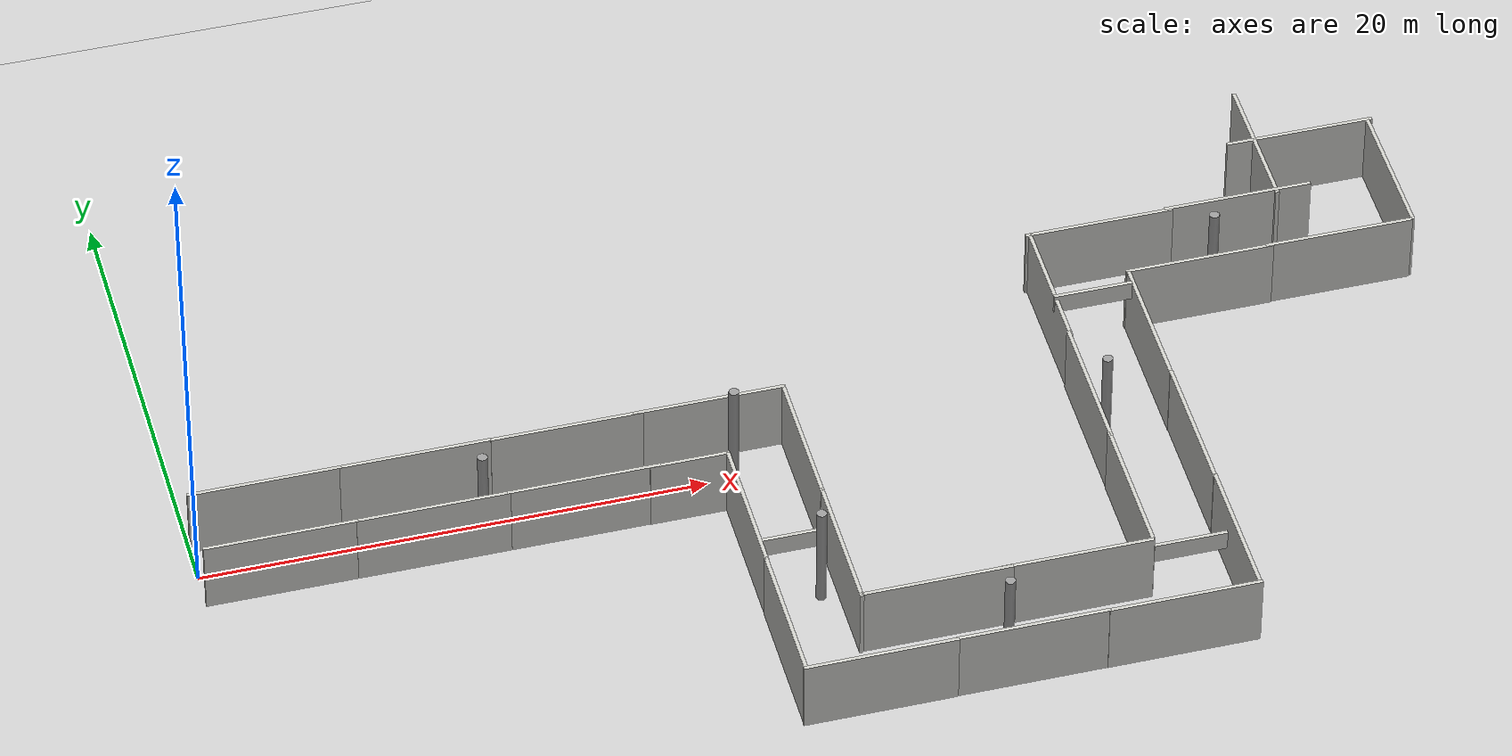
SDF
<sdf version="1.6">
 <world name="default">
  <light name="sun" type="directional">
   <pose>0 0 10 0 -0 0</pose>
   <diffuse>0.8 0.8 0.8 1</diffuse>
   <specular>0.2 0.2 0.2 1</specular>
   <attenuation>
    <range>1000</range>
    <constant>0.9</constant>
    <linear>0.01</linear>
    <quadratic>0.001</quadratic>
   </attenuation>
   <direction>-0.5 0.1 -0.9</direction>
  </light>
  <model name="ground_plane">
   <static>1</static>
   <link name="link">
    <collision name="collision">
     <geometry><plane><normal>0 0 1</normal><size>100 100</size></plane></geometry>
     <surface>
      <contact><collide_bitmask>65535</collide_bitmask></contact>
      <friction><ode><mu>100</mu><mu2>50</mu2></ode></friction>
     </surface>
    </collision>
    <visual name="visual">
     <cast_shadows>0</cast_shadows>
     <geometry><plane><normal>0 0 1</normal><size>100 100</size></plane></geometry>
     <material>
      <script><uri>file://media/materials/scripts/gazebo.material</uri><name>Gazebo/Grey</name></script>
     </material>
    </visual>
   </link>
  </model>
  <gravity>0 0 -9.8</gravity>
  <magnetic_field>6e-06 2.3e-05 -4.2e-05</magnetic_field>
  <atmosphere type="adiabatic"/>
  <physics name="default_physics" default="0" type="ode">
   <max_step_size>0.001</max_step_size>
   <real_time_factor>1</real_time_factor>
   <real_time_update_rate>1000</real_time_update_rate>
  </physics>
  <scene><ambient>0.4 0.4 0.4 1</ambient><background>0.7 0.7 0.7 1</background><shadows>1</shadows></scene>
  <spherical_coordinates>
   <surface_model>EARTH_WGS84</surface_model>
   <latitude_deg>0</latitude_deg>
   <longitude_deg>0</longitude_deg>
   <elevation>0</elevation>
   <heading_deg>0</heading_deg>
  </spherical_coordinates>
  <model name="6m_wall_new">
   <link name="Wall_0">
    <collision name="6m_wall_newc">
     <geometry><box><size>6 0.15 3</size></box></geometry>
     <pose>0 0 1.5 0 -0 0</pose>
    </collision>
    <visual name="6m_wall_newv">
     <pose>0 0 1.5 0 -0 0</pose>
     <geometry><box><size>6 0.15 3</size></box></geometry>
     <material>
      <script><uri>file://media/materials/scripts/gazebo.material</uri><name>Gazebo/CeilingTiled</name></script>
      <ambient>1 1 1 1</ambient>
     </material>
     <meta><layer>0</layer></meta>
    </visual>
   </link>
   <static>1</static>
   <pose>2.99996 1.48839 0 0 -0 0</pose>
  </model>
  <model name="6m_wall_new_0">
   <link name="Wall_0">
    <collision name="6m_wall_newc">
     <geometry><box><size>6 0.15 3</size></box></geometry>
     <pose>0 0 1.5 0 -0 0</pose>
    </collision>
    <visual name="6m_wall_newv">
     <pose>0 0 1.5 0 -0 0</pose>
     <geometry><box><size>6 0.15 3</size></box></geometry>
     <material>
      <script><uri>file://media/materials/scripts/gazebo.material</uri><name>Gazebo/CeilingTiled</name></script>
      <ambient>1 1 1 1</ambient>
     </material>
     <meta><layer>0</layer></meta>
    </visual>
   </link>
   <static>1</static>
   <pose>2.97128 -1.50406 0 0 -0 0</pose>
  </model>
  <model name="6m_wall_new_0_clone">
   <link name="Wall_0">
    <collision name="6m_wall_newc">
     <geometry><box><size>6 0.15 3</size></box></geometry>
     <pose>0 0 1.5 0 -0 0</pose>
    </collision>
    <visual name="6m_wall_newv">
     <pose>0 0 1.5 0 -0 0</pose>
     <geometry><box><size>6 0.15 3</size></box></geometry>
     <material>
      <script><uri>file://media/materials/scripts/gazebo.material</uri><name>Gazebo/CeilingTiled</name></script>
      <ambient>1 1 1 1</ambient>
     </material>
     <meta><layer>0</layer></meta>
    </visual>
   </link>
   <static>1</static>
   <pose>8.88664 -1.50661 0 0 -0 0</pose>
  </model>
  <model name="6m_wall_new_clone">
   <link name="Wall_0">
    <collision name="6m_wall_newc">
     <geometry><box><size>6 0.15 3</size></box></geometry>
     <pose>0 0 1.5 0 -0 0</pose>
    </collision>
    <visual name="6m_wall_newv">
     <pose>0 0 1.5 0 -0 0</pose>
     <geometry><box><size>6 0.15 3</size></box></geometry>
     <material>
      <script><uri>file://media/materials/scripts/gazebo.material</uri><name>Gazebo/CeilingTiled</name></script>
      <ambient>1 1 1 1</ambient>
     </material>
     <meta><layer>0</layer></meta>
    </visual>
   </link>
   <static>1</static>
   <pose>8.91227 1.48711 0 0 -0 0</pose>
  </model>
  <model name="6m_wall_new_clone_0">
   <link name="Wall_0">
    <collision name="6m_wall_newc">
     <geometry><box><size>6 0.15 3</size></box></geometry>
     <pose>0 0 1.5 0 -0 0</pose>
    </collision>
    <visual name="6m_wall_newv">
     <pose>0 0 1.5 0 -0 0</pose>
     <geometry><box><size>6 0.15 3</size></box></geometry>
     <material>
      <script><uri>file://media/materials/scripts/gazebo.material</uri><name>Gazebo/CeilingTiled</name></script>
      <ambient>1 1 1 1</ambient>
     </material>
     <meta><layer>0</layer></meta>
    </visual>
   </link>
   <static>1</static>
   <pose>14.8326 1.47184 0 0 -0 0</pose>
  </model>
  <model name="6m_wall_new_clone_1">
   <link name="Wall_0">
    <collision name="6m_wall_newc">
     <geometry><box><size>6 0.15 3</size></box></geometry>
     <pose>0 0 1.5 0 -0 0</pose>
    </collision>
    <visual name="6m_wall_newv">
     <pose>0 0 1.5 0 -0 0</pose>
     <geometry><box><size>6 0.15 3</size></box></geometry>
     <material>
      <script><uri>file://media/materials/scripts/gazebo.material</uri><name>Gazebo/CeilingTiled</name></script>
      <ambient>1 1 1 1</ambient>
     </material>
     <meta><layer>0</layer></meta>
    </visual>
   </link>
   <static>1</static>
   <pose>20.443 1.48202 0 0 -0 0</pose>
  </model>
  <model name="6m_wall_new_clone_2">
   <link name="Wall_0">
    <collision name="6m_wall_newc">
     <geometry><box><size>6 0.15 3</size></box></geometry>
     <pose>0 0 1.5 0 -0 0</pose>
    </collision>
    <visual name="6m_wall_newv">
     <pose>0 0 1.5 0 -0 0</pose>
     <geometry><box><size>6 0.15 3</size></box></geometry>
     <material>
      <script><uri>file://media/materials/scripts/gazebo.material</uri><name>Gazebo/CeilingTiled</name></script>
      <ambient>1 1 1 1</ambient>
     </material>
     <meta><layer>0</layer></meta>
    </visual>
   </link>
   <static>1</static>
   <pose>14.7657 -1.5059 0 0 -0 0</pose>
  </model>
  <model name="3m_wall_new">
   <pose>18.9099 -1.52611 0 0 -0 0</pose>
   <link name="Wall_45">
    <collision name="3m_wall_newc">
     <geometry><box><size>3.15 0.15 3</size></box></geometry>
     <pose>0 0 1.5 0 -0 0</pose>
    </collision>
    <visual name="3m_wall_newv">
     <pose>0 0 1.5 0 -0 0</pose>
     <geometry><box><size>3.15 0.15 3</size></box></geometry>
     <material>
      <script><uri>file://media/materials/scripts/gazebo.material</uri><name>Gazebo/CeilingTiled</name></script>
      <ambient>1 1 1 1</ambient>
     </material>
     <meta><layer>0</layer></meta>
    </visual>
   </link>
   <static>1</static>
  </model>
  <model name="6m_wall_new_1">
   <link name="Wall_0">
    <collision name="6m_wall_newc">
     <geometry><box><size>6 0.15 3</size></box></geometry>
     <pose>0 0 1.5 0 -0 0</pose>
    </collision>
    <visual name="6m_wall_newv">
     <pose>0 0 1.5 0 -0 0</pose>
     <geometry><box><size>6 0.15 3</size></box></geometry>
     <material>
      <script><uri>file://media/materials/scripts/gazebo.material</uri><name>Gazebo/CeilingTiled</name></script>
      <ambient>1 1 1 1</ambient>
     </material>
     <meta><layer>0</layer></meta>
    </visual>
   </link>
   <static>1</static>
   <pose>20.3797 -4.52264 0 0 0 -1.58088</pose>
  </model>
  <model name="6m_wall_new_1_clone">
   <link name="Wall_0">
    <collision name="6m_wall_newc">
     <geometry><box><size>6 0.15 3</size></box></geometry>
     <pose>0 0 1.5 0 -0 0</pose>
    </collision>
    <visual name="6m_wall_newv">
     <pose>0 0 1.5 0 -0 0</pose>
     <geometry><box><size>6 0.15 3</size></box></geometry>
     <material>
      <script><uri>file://media/materials/scripts/gazebo.material</uri><name>Gazebo/CeilingTiled</name></script>
      <ambient>1 1 1 1</ambient>
     </material>
     <meta><layer>0</layer></meta>
    </visual>
   </link>
   <static>1</static>
   <pose>23.3711 -1.44604 0 0 0 -1.58088</pose>
  </model>
  <model name="6m_wall_new_1_clone_0">
   <link name="Wall_0">
    <collision name="6m_wall_newc">
     <geometry><box><size>6 0.15 3</size></box></geometry>
     <pose>0 0 1.5 0 -0 0</pose>
    </collision>
    <visual name="6m_wall_newv">
     <pose>0 0 1.5 0 -0 0</pose>
     <geometry><box><size>6 0.15 3</size></box></geometry>
     <material>
      <script><uri>file://media/materials/scripts/gazebo.material</uri><name>Gazebo/CeilingTiled</name></script>
      <ambient>1 1 1 1</ambient>
     </material>
     <meta><layer>0</layer></meta>
    </visual>
   </link>
   <static>1</static>
   <pose>23.3143 -7.30735 0 0 0 -1.58088</pose>
  </model>
  <model name="6m_wall_new_1_clone_1">
   <link name="Wall_0">
    <collision name="6m_wall_newc">
     <geometry><box><size>6 0.15 3</size></box></geometry>
     <pose>0 0 1.5 0 -0 0</pose>
    </collision>
    <visual name="6m_wall_newv">
     <pose>0 0 1.5 0 -0 0</pose>
     <geometry><box><size>6 0.15 3</size></box></geometry>
     <material>
      <script><uri>file://media/materials/scripts/gazebo.material</uri><name>Gazebo/CeilingTiled</name></script>
      <ambient>1 1 1 1</ambient>
     </material>
     <meta><layer>0</layer></meta>
    </visual>
   </link>
   <static>1</static>
   <pose>20.3048 -10.3646 0 0 0 -1.58088</pose>
  </model>
  <model name="6m_wall_new_2">
   <link name="Wall_0">
    <collision name="6m_wall_newc">
     <geometry><box><size>6 0.15 3</size></box></geometry>
     <pose>0 0 1.5 0 -0 0</pose>
    </collision>
    <visual name="6m_wall_newv">
     <pose>0 0 1.5 0 -0 0</pose>
     <geometry><box><size>6 0.15 3</size></box></geometry>
     <material>
      <script><uri>file://media/materials/scripts/gazebo.material</uri><name>Gazebo/CeilingTiled</name></script>
      <ambient>1 1 1 1</ambient>
     </material>
     <meta><layer>0</layer></meta>
    </visual>
   </link>
   <static>1</static>
   <pose>23.1824 -13.3777 0 0 -0 0</pose>
  </model>
  <model name="6m_wall_new_2_clone">
   <link name="Wall_0">
    <collision name="6m_wall_newc">
     <geometry><box><size>6 0.15 3</size></box></geometry>
     <pose>0 0 1.5 0 -0 0</pose>
    </collision>
    <visual name="6m_wall_newv">
     <pose>0 0 1.5 0 -0 0</pose>
     <geometry><box><size>6 0.15 3</size></box></geometry>
     <material>
      <script><uri>file://media/materials/scripts/gazebo.material</uri><name>Gazebo/CeilingTiled</name></script>
      <ambient>1 1 1 1</ambient>
     </material>
     <meta><layer>0</layer></meta>
    </visual>
   </link>
   <static>1</static>
   <pose>26.214 -10.1857 0 0 -0 0</pose>
  </model>
  <model name="6m_wall_new_2_clone_0">
   <link name="Wall_0">
    <collision name="6m_wall_newc">
     <geometry><box><size>6 0.15 3</size></box></geometry>
     <pose>0 0 1.5 0 -0 0</pose>
    </collision>
    <visual name="6m_wall_newv">
     <pose>0 0 1.5 0 -0 0</pose>
     <geometry><box><size>6 0.15 3</size></box></geometry>
     <material>
      <script><uri>file://media/materials/scripts/gazebo.material</uri><name>Gazebo/CeilingTiled</name></script>
      <ambient>1 1 1 1</ambient>
     </material>
     <meta><layer>0</layer></meta>
    </visual>
   </link>
   <static>1</static>
   <pose>29.0881 -13.3553 0 0 -0 0</pose>
  </model>
  <model name="6m_wall_new_2_clone_1">
   <link name="Wall_0">
    <collision name="6m_wall_newc">
     <geometry><box><size>6 0.15 3</size></box></geometry>
     <pose>0 0 1.5 0 -0 0</pose>
    </collision>
    <visual name="6m_wall_newv">
     <pose>0 0 1.5 0 -0 0</pose>
     <geometry><box><size>6 0.15 3</size></box></geometry>
     <material>
      <script><uri>file://media/materials/scripts/gazebo.material</uri><name>Gazebo/CeilingTiled</name></script>
      <ambient>1 1 1 1</ambient>
     </material>
     <meta><layer>0</layer></meta>
    </visual>
   </link>
   <static>1</static>
   <pose>31.7375 -10.1706 0 0 -0 0</pose>
  </model>
  <model name="6m_wall_new_2_clone_2">
   <link name="Wall_0">
    <collision name="6m_wall_newc">
     <geometry><box><size>6 0.15 3</size></box></geometry>
     <pose>0 0 1.5 0 -0 0</pose>
    </collision>
    <visual name="6m_wall_newv">
     <pose>0 0 1.5 0 -0 0</pose>
     <geometry><box><size>6 0.15 3</size></box></geometry>
     <material>
      <script><uri>file://media/materials/scripts/gazebo.material</uri><name>Gazebo/CeilingTiled</name></script>
      <ambient>1 1 1 1</ambient>
     </material>
     <meta><layer>0</layer></meta>
    </visual>
   </link>
   <static>1</static>
   <pose>35.0267 -13.3707 0 0 -0 0</pose>
  </model>
  <model name="6m_wall_new_1_clone_0_clone">
   <link name="Wall_0">
    <collision name="6m_wall_newc">
     <geometry><box><size>6 0.15 3</size></box></geometry>
     <pose>0 0 1.5 0 -0 0</pose>
    </collision>
    <visual name="6m_wall_newv">
     <pose>0 0 1.5 0 -0 0</pose>
     <geometry><box><size>6 0.15 3</size></box></geometry>
     <material>
      <script><uri>file://media/materials/scripts/gazebo.material</uri><name>Gazebo/CeilingTiled</name></script>
      <ambient>1 1 1 1</ambient>
     </material>
     <meta><layer>0</layer></meta>
    </visual>
   </link>
   <static>1</static>
   <pose>37.9532 -10.3881 0 0 0 -1.58088</pose>
  </model>
  <model name="6m_wall_new_1_clone_0_clone_0">
   <link name="Wall_0">
    <collision name="6m_wall_newc">
     <geometry><box><size>6 0.15 3</size></box></geometry>
     <pose>0 0 1.5 0 -0 0</pose>
    </collision>
    <visual name="6m_wall_newv">
     <pose>0 0 1.5 0 -0 0</pose>
     <geometry><box><size>6 0.15 3</size></box></geometry>
     <material>
      <script><uri>file://media/materials/scripts/gazebo.material</uri><name>Gazebo/CeilingTiled</name></script>
      <ambient>1 1 1 1</ambient>
     </material>
     <meta><layer>0</layer></meta>
    </visual>
   </link>
   <static>1</static>
   <pose>34.7349 -7.1501 0 0 0 -1.58088</pose>
  </model>
  <model name="6m_wall_new_1_clone_0_clone_1">
   <link name="Wall_0">
    <collision name="6m_wall_newc">
     <geometry><box><size>6 0.15 3</size></box></geometry>
     <pose>0 0 1.5 0 -0 0</pose>
    </collision>
    <visual name="6m_wall_newv">
     <pose>0 0 1.5 0 -0 0</pose>
     <geometry><box><size>6 0.15 3</size></box></geometry>
     <material>
      <script><uri>file://media/materials/scripts/gazebo.material</uri><name>Gazebo/CeilingTiled</name></script>
      <ambient>1 1 1 1</ambient>
     </material>
     <meta><layer>0</layer></meta>
    </visual>
   </link>
   <static>1</static>
   <pose>37.9931 -4.50209 0 0 0 -1.58088</pose>
  </model>
  <model name="6m_wall_new_1_clone_0_clone_2">
   <link name="Wall_0">
    <collision name="6m_wall_newc">
     <geometry><box><size>6 0.15 3</size></box></geometry>
     <pose>0 0 1.5 0 -0 0</pose>
    </collision>
    <visual name="6m_wall_newv">
     <pose>0 0 1.5 0 -0 0</pose>
     <geometry><box><size>6 0.15 3</size></box></geometry>
     <material>
      <script><uri>file://media/materials/scripts/gazebo.material</uri><name>Gazebo/CeilingTiled</name></script>
      <ambient>1 1 1 1</ambient>
     </material>
     <meta><layer>0</layer></meta>
    </visual>
   </link>
   <static>1</static>
   <pose>34.8151 -1.36737 0 0 0 -1.58088</pose>
  </model>
  <model name="6m_wall_new_1_clone_0_clone_1_clone">
   <link name="Wall_0">
    <collision name="6m_wall_newc">
     <geometry><box><size>6 0.15 3</size></box></geometry>
     <pose>0 0 1.5 0 -0 0</pose>
    </collision>
    <visual name="6m_wall_newv">
     <pose>0 0 1.5 0 -0 0</pose>
     <geometry><box><size>6 0.15 3</size></box></geometry>
     <material>
      <script><uri>file://media/materials/scripts/gazebo.material</uri><name>Gazebo/CeilingTiled</name></script>
      <ambient>1 1 1 1</ambient>
     </material>
     <meta><layer>0</layer></meta>
    </visual>
   </link>
   <static>1</static>
   <pose>38.0378 1.3423 0 0 0 -1.58088</pose>
  </model>
  <model name="6m_wall_new_1_clone_0_clone_1_clone_0">
   <link name="Wall_0">
    <collision name="6m_wall_newc">
     <geometry><box><size>6 0.15 3</size></box></geometry>
     <pose>0 0 1.5 0 -0 0</pose>
    </collision>
    <visual name="6m_wall_newv">
     <pose>0 0 1.5 0 -0 0</pose>
     <geometry><box><size>6 0.15 3</size></box></geometry>
     <material>
      <script><uri>file://media/materials/scripts/gazebo.material</uri><name>Gazebo/CeilingTiled</name></script>
      <ambient>1 1 1 1</ambient>
     </material>
     <meta><layer>0</layer></meta>
    </visual>
   </link>
   <static>1</static>
   <pose>34.914 4.34134 0 0 0 -1.58088</pose>
  </model>
  <model name="6m_wall_new_2_clone_2_clone">
   <link name="Wall_0">
    <collision name="6m_wall_newc">
     <geometry><box><size>6 0.15 3</size></box></geometry>
     <pose>0 0 1.5 0 -0 0</pose>
    </collision>
    <visual name="6m_wall_newv">
     <pose>0 0 1.5 0 -0 0</pose>
     <geometry><box><size>6 0.15 3</size></box></geometry>
     <material>
      <script><uri>file://media/materials/scripts/gazebo.material</uri><name>Gazebo/CeilingTiled</name></script>
      <ambient>1 1 1 1</ambient>
     </material>
     <meta><layer>0</layer></meta>
    </visual>
   </link>
   <static>1</static>
   <pose>40.9725 4.30304 0 0 -0 0</pose>
  </model>
  <model name="6m_wall_new_2_clone_2_clone_0">
   <link name="Wall_0">
    <collision name="6m_wall_newc">
     <geometry><box><size>6 0.15 3</size></box></geometry>
     <pose>0 0 1.5 0 -0 0</pose>
    </collision>
    <visual name="6m_wall_newv">
     <pose>0 0 1.5 0 -0 0</pose>
     <geometry><box><size>6 0.15 3</size></box></geometry>
     <material>
      <script><uri>file://media/materials/scripts/gazebo.material</uri><name>Gazebo/CeilingTiled</name></script>
      <ambient>1 1 1 1</ambient>
     </material>
     <meta><layer>0</layer></meta>
    </visual>
   </link>
   <static>1</static>
   <pose>37.7728 7.28155 0 0 -0 0</pose>
  </model>
  <model name="6m_wall_new_2_clone_2_clone_1">
   <link name="Wall_0">
    <collision name="6m_wall_newc">
     <geometry><box><size>6 0.15 3</size></box></geometry>
     <pose>0 0 1.5 0 -0 0</pose>
    </collision>
    <visual name="6m_wall_newv">
     <pose>0 0 1.5 0 -0 0</pose>
     <geometry><box><size>6 0.15 3</size></box></geometry>
     <material>
      <script><uri>file://media/materials/scripts/gazebo.material</uri><name>Gazebo/CeilingTiled</name></script>
      <ambient>1 1 1 1</ambient>
     </material>
     <meta><layer>0</layer></meta>
    </visual>
   </link>
   <static>1</static>
   <pose>43.4503 7.36142 0 0 -0 0</pose>
  </model>
  <model name="6m_wall_new_2_clone_2_clone_2">
   <link name="Wall_0">
    <collision name="6m_wall_newc">
     <geometry><box><size>6 0.15 3</size></box></geometry>
     <pose>0 0 1.5 0 -0 0</pose>
    </collision>
    <visual name="6m_wall_newv">
     <pose>0 0 1.5 0 -0 0</pose>
     <geometry><box><size>6 0.15 3</size></box></geometry>
     <material>
      <script><uri>file://media/materials/scripts/gazebo.material</uri><name>Gazebo/CeilingTiled</name></script>
      <ambient>1 1 1 1</ambient>
     </material>
     <meta><layer>0</layer></meta>
    </visual>
   </link>
   <static>1</static>
   <pose>46.6675 4.33786 0 0 -0 0</pose>
  </model>
  <model name="6m_wall_new_1_clone_0_clone_1_clone_clone">
   <link name="Wall_0">
    <collision name="6m_wall_newc">
     <geometry><box><size>6 0.15 3</size></box></geometry>
     <pose>0 0 1.5 0 -0 0</pose>
    </collision>
    <visual name="6m_wall_newv">
     <pose>0 0 1.5 0 -0 0</pose>
     <geometry><box><size>6 0.15 3</size></box></geometry>
     <material>
      <script><uri>file://media/materials/scripts/gazebo.material</uri><name>Gazebo/CeilingTiled</name></script>
      <ambient>1 1 1 1</ambient>
     </material>
     <meta><layer>0</layer></meta>
    </visual>
   </link>
   <static>1</static>
   <pose>49.729 7.33101 0 0 0 -1.58088</pose>
  </model>
  <model name="6m_wall_new_2_clone_2_clone_1_clone">
   <link name="Wall_0">
    <collision name="6m_wall_newc">
     <geometry><box><size>6 0.15 3</size></box></geometry>
     <pose>0 0 1.5 0 -0 0</pose>
    </collision>
    <visual name="6m_wall_newv">
     <pose>0 0 1.5 0 -0 0</pose>
     <geometry><box><size>6 0.15 3</size></box></geometry>
     <material>
      <script><uri>file://media/materials/scripts/gazebo.material</uri><name>Gazebo/CeilingTiled</name></script>
      <ambient>1 1 1 1</ambient>
     </material>
     <meta><layer>0</layer></meta>
    </visual>
   </link>
   <static>1</static>
   <pose>46.9513 10.3627 0 0 -0 0</pose>
  </model>
  <model name="6m_wall_new_1_clone_0_clone_1_clone_0_clone_0_clone">
   <link name="Wall_0">
    <collision name="6m_wall_newc">
     <geometry><box><size>6 0.15 3</size></box></geometry>
     <pose>0 0 1.5 0 -0 0</pose>
    </collision>
    <visual name="6m_wall_newv">
     <pose>0 0 1.5 0 -0 0</pose>
     <geometry><box><size>6 0.15 3</size></box></geometry>
     <material>
      <script><uri>file://media/materials/scripts/gazebo.material</uri><name>Gazebo/CeilingTiled</name></script>
      <ambient>1 1 1 1</ambient>
     </material>
     <meta><layer>0</layer></meta>
    </visual>
   </link>
   <static>1</static>
   <pose>45.0661 10.1402 0 0 0 -1.58088</pose>
  </model>
  <model name="unit_cylinder">
   <pose>21.0999 0.206064 2.21163 0 0 -0.010858</pose>
   <link name="link">
    <inertial>
     <mass>1</mass>
     <inertia><ixx>0.145833</ixx><ixy>0</ixy><ixz>0</ixz><iyy>0.145833</iyy><iyz>0</iyz><izz>0.125</izz></inertia>
    </inertial>
    <collision name="collision">
     <geometry><cylinder><radius>0.198405</radius><length>4.42327</length></cylinder></geometry>
    </collision>
    <visual name="visual">
     <geometry><cylinder><radius>0.198405</radius><length>4.42327</length></cylinder></geometry>
     <material>
      <script><name>Gazebo/Grey</name><uri>file://media/materials/scripts/gazebo.material</uri></script>
     </material>
    </visual>
   </link>
  </model>
  <model name="unit_cylinder_clone">
   <pose>28.4558 -12.2903 2.21163 0 0 -0.010859</pose>
   <link name="link">
    <inertial>
     <mass>1</mass>
     <inertia><ixx>0.145833</ixx><ixy>0</ixy><ixz>0</ixz><iyy>0.145833</iyy><iyz>0</iyz><izz>0.125</izz></inertia>
    </inertial>
    <collision name="collision">
     <geometry><cylinder><radius>0.198405</radius><length>4.42327</length></cylinder></geometry>
    </collision>
    <visual name="visual">
     <geometry><cylinder><radius>0.198405</radius><length>4.42327</length></cylinder></geometry>
     <material>
      <script><name>Gazebo/Grey</name><uri>file://media/materials/scripts/gazebo.material</uri></script>
     </material>
    </visual>
   </link>
  </model>
  <model name="unit_cylinder_clone_0">
   <pose>10.9877 -0.822434 2.21163 0 0 -0.010358</pose>
   <link name="link">
    <inertial>
     <mass>1</mass>
     <inertia><ixx>0.145833</ixx><ixy>0</ixy><ixz>0</ixz><iyy>0.145833</iyy><iyz>0</iyz><izz>0.125</izz></inertia>
    </inertial>
    <collision name="collision">
     <geometry><cylinder><radius>0.198405</radius><length>4.42327</length></cylinder></geometry>
    </collision>
    <visual name="visual">
     <geometry><cylinder><radius>0.198405</radius><length>4.42327</length></cylinder></geometry>
     <material>
      <script><name>Gazebo/Grey</name><uri>file://media/materials/scripts/gazebo.material</uri></script>
     </material>
    </visual>
   </link>
  </model>
  <model name="unit_cylinder_clone_1">
   <pose>22.6008 -7.04097 2.21163 0 0 -0.009857</pose>
   <link name="link">
    <inertial>
     <mass>1</mass>
     <inertia><ixx>0.145833</ixx><ixy>0</ixy><ixz>0</ixz><iyy>0.145833</iyy><iyz>0</iyz><izz>0.125</izz></inertia>
    </inertial>
    <collision name="collision">
     <geometry><cylinder><radius>0.198405</radius><length>4.42327</length></cylinder></geometry>
    </collision>
    <visual name="visual">
     <geometry><cylinder><radius>0.198405</radius><length>4.42327</length></cylinder></geometry>
     <material>
      <script><name>Gazebo/Grey</name><uri>file://media/materials/scripts/gazebo.material</uri></script>
     </material>
    </visual>
   </link>
  </model>
  <model name="unit_cylinder_clone_2">
   <pose>35.4123 -1.67732 2.21163 0 0 -0.009405</pose>
   <link name="link">
    <inertial>
     <mass>1</mass>
     <inertia><ixx>0.145833</ixx><ixy>0</ixy><ixz>0</ixz><iyy>0.145833</iyy><iyz>0</iyz><izz>0.125</izz></inertia>
    </inertial>
    <collision name="collision">
     <geometry><cylinder><radius>0.198405</radius><length>4.42327</length></cylinder></geometry>
    </collision>
    <visual name="visual">
     <geometry><cylinder><radius>0.198405</radius><length>4.42327</length></cylinder></geometry>
     <material>
      <script><name>Gazebo/Grey</name><uri>file://media/materials/scripts/gazebo.material</uri></script>
     </material>
    </visual>
   </link>
  </model>
  <model name="unit_cylinder_clone_3">
   <pose>41.7521 5.06183 2.21163 0 0 -0.008904</pose>
   <link name="link">
    <inertial>
     <mass>1</mass>
     <inertia><ixx>0.145833</ixx><ixy>0</ixy><ixz>0</ixz><iyy>0.145833</iyy><iyz>0</iyz><izz>0.125</izz></inertia>
    </inertial>
    <collision name="collision">
     <geometry><cylinder><radius>0.198405</radius><length>4.42327</length></cylinder></geometry>
    </collision>
    <visual name="visual">
     <geometry><cylinder><radius>0.198405</radius><length>4.42327</length></cylinder></geometry>
     <material>
      <script><name>Gazebo/Grey</name><uri>file://media/materials/scripts/gazebo.material</uri></script>
     </material>
    </visual>
   </link>
  </model>
  <model name="3m_low_wall">
   <pose>36.337 -9.45536 0 0 -0 0</pose>
   <link name="Wall_45">
    <collision name="Wall_45_Collision">
     <geometry><box><size>3.15 0.15 0.8</size></box></geometry>
     <pose>0 0 1.5 0 -0 0</pose>
    </collision>
    <visual name="Wall_45_Visual">
     <pose>0 0 1.5 0 -0 0</pose>
     <geometry><box><size>3.15 0.15 0.8</size></box></geometry>
     <material>
      <script><uri>file://media/materials/scripts/gazebo.material</uri><name>Gazebo/CeilingTiled</name></script>
      <ambient>1 1 1 1</ambient>
     </material>
     <meta><layer>0</layer></meta>
    </visual>
   </link>
   <static>1</static>
  </model>
  <model name="3m_low_wall_clone">
   <pose>36.3814 3.48787 1.25888 0 -0 0</pose>
   <link name="Wall_45">
    <collision name="Wall_45_Collision">
     <geometry><box><size>3.15 0.15 0.8</size></box></geometry>
     <pose>0 0 1.5 0 -0 0</pose>
    </collision>
    <visual name="Wall_45_Visual">
     <pose>0 0 1.5 0 -0 0</pose>
     <geometry><box><size>3.15 0.15 0.8</size></box></geometry>
     <material>
      <script><uri>file://media/materials/scripts/gazebo.material</uri><name>Gazebo/CeilingTiled</name></script>
      <ambient>1 1 1 1</ambient>
     </material>
     <meta><layer>0</layer></meta>
    </visual>
   </link>
   <static>1</static>
  </model>
  <model name="3m_low_wall_clone_0">
   <pose>21.8831 -4.50496 -0.876111 0 -0 0</pose>
   <link name="Wall_45">
    <collision name="Wall_45_Collision">
     <geometry><box><size>3.15 0.15 0.8</size></box></geometry>
     <pose>0 0 1.5 0 -0 0</pose>
    </collision>
    <visual name="Wall_45_Visual">
     <pose>0 0 1.5 0 -0 0</pose>
     <geometry><box><size>3.15 0.15 0.8</size></box></geometry>
     <material>
      <script><uri>file://media/materials/scripts/gazebo.material</uri><name>Gazebo/CeilingTiled</name></script>
      <ambient>1 1 1 1</ambient>
     </material>
     <meta><layer>0</layer></meta>
    </visual>
   </link>
   <static>1</static>
  </model>
 </world>
</sdf>
